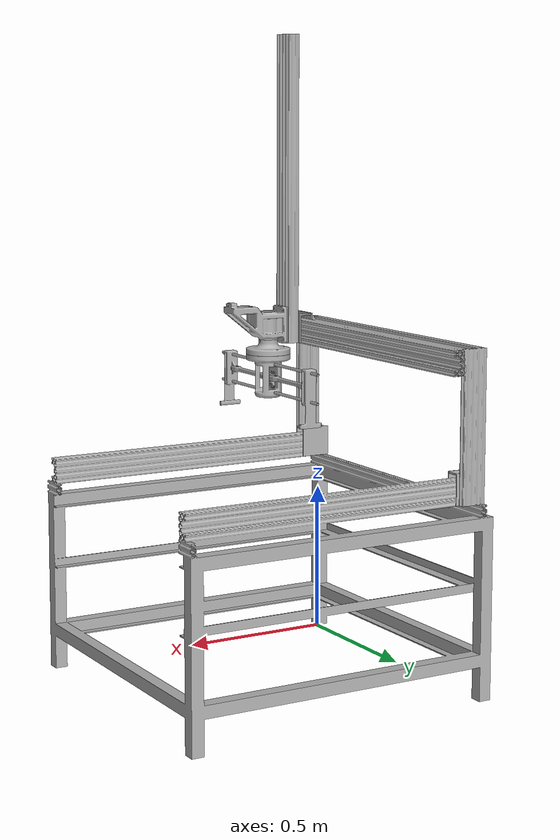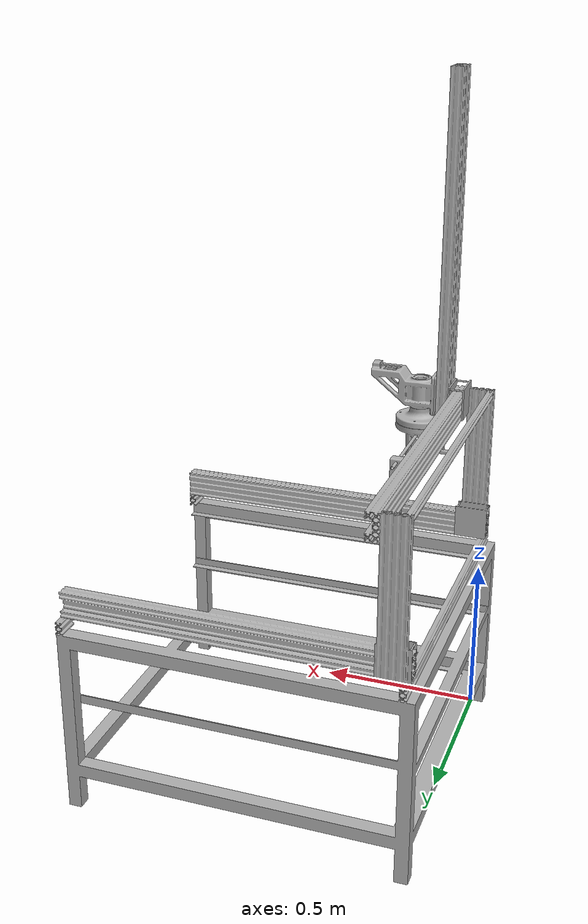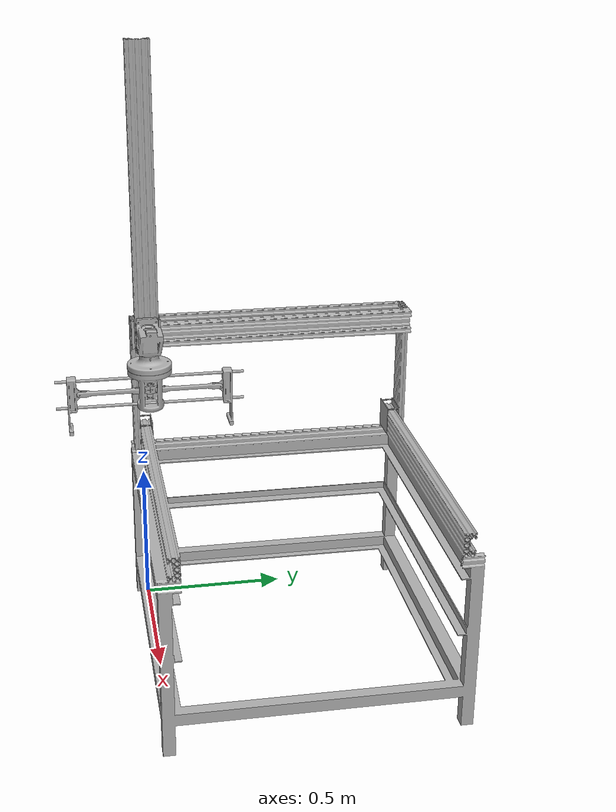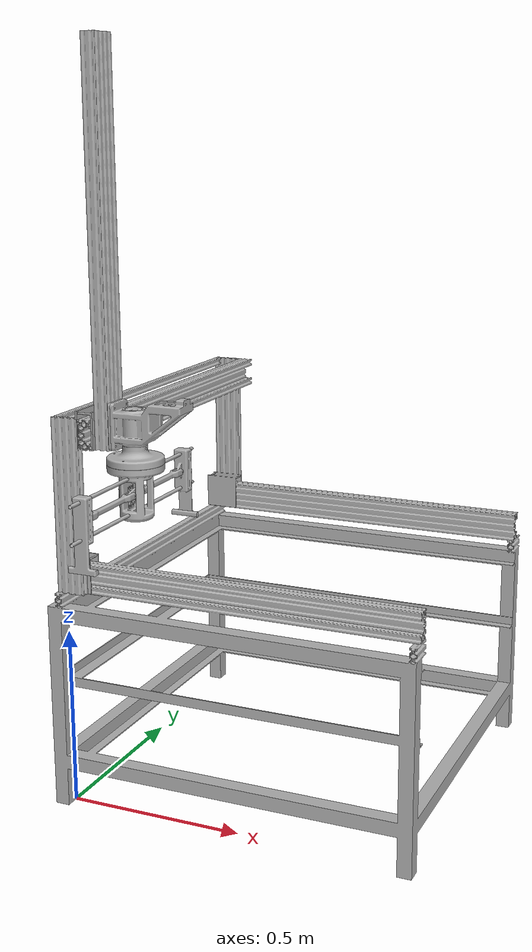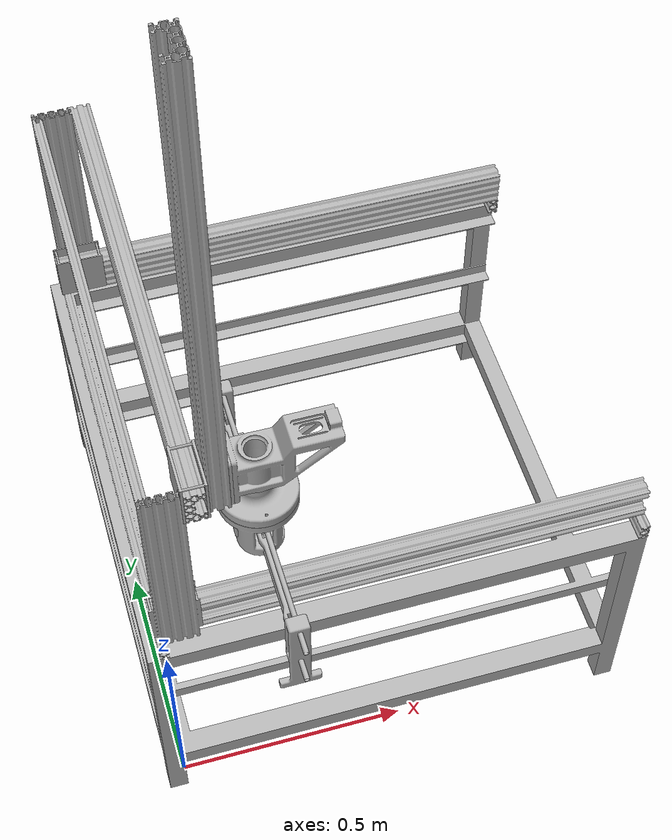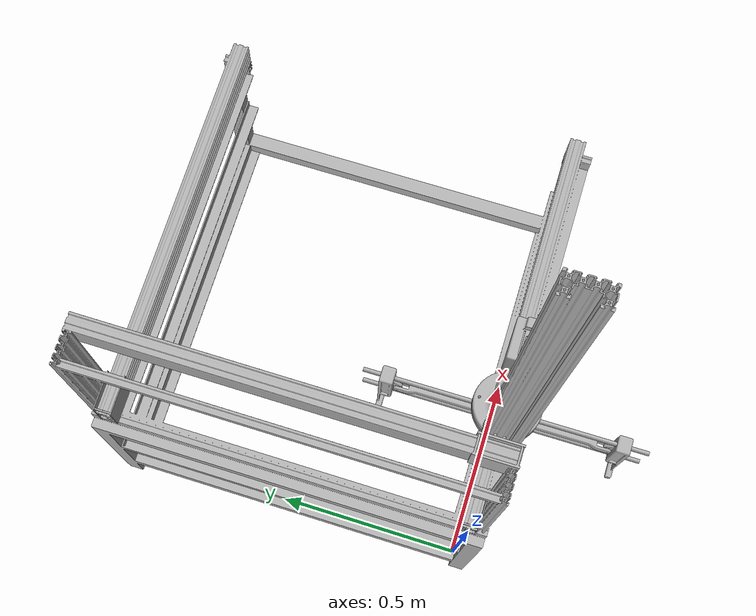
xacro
<?xml version="1.0" ?>
<robot name="robot_ensamble" xmlns:xacro="http://www.ros.org/wiki/xacro">

<!-- ROS usa package://; la exportacion para Isaac usa ../meshes/. -->
<xacro:arg name="mesh_prefix" default="package://robot_ensamble_description/meshes/" />
<xacro:arg name="include_ros_extensions" default="true" />
<xacro:include filename="materials.xacro" />
<xacro:if value="$(arg include_ros_extensions)">
  <xacro:include filename="robot_ensamble.trans" />
  <xacro:include filename="robot_ensamble.gazebo" />
</xacro:if>
<link name="base_link">
  <inertial>
    <origin xyz="0.40917645423699256 0.4610253880844107 0.3620181857362518" rpy="0 0 0"/>
    <mass value="117.52823039700941"/>
    <inertia ixx="25.806076" iyy="22.489346" izz="36.590381" ixy="-0.011239" iyz="0.003272" ixz="1.368512"/>
  </inertial>
  <visual>
    <origin xyz="0 0 0" rpy="0 0 0"/>
    <geometry>
      <mesh filename="$(arg mesh_prefix)base_link.stl" scale="0.001 0.001 0.001"/>
    </geometry>
    <material name="silver"/>
  </visual>
  <collision>
    <origin xyz="0 0 0" rpy="0 0 0"/>
    <geometry>
      <mesh filename="$(arg mesh_prefix)base_link.stl" scale="0.001 0.001 0.001"/>
    </geometry>
  </collision>
</link>

<link name="x_link_1">
  <inertial>
    <origin xyz="0.07555855369126223 0.4303889916943565 0.35024537371790165" rpy="0 0 0"/>
    <mass value="4.217725934641851"/>
    <inertia ixx="0.681784" iyy="0.0999" izz="0.593813" ixy="-3.2e-05" iyz="0.000114" ixz="-0.00924"/>
  </inertial>
  <visual>
    <origin xyz="0.02001 -0.03 -0.6215" rpy="0 0 0"/>
    <geometry>
      <mesh filename="$(arg mesh_prefix)x_link_1.stl" scale="0.001 0.001 0.001"/>
    </geometry>
    <material name="silver"/>
  </visual>
  <collision>
    <origin xyz="0.02001 -0.03 -0.6215" rpy="0 0 0"/>
    <geometry>
      <mesh filename="$(arg mesh_prefix)x_link_1.stl" scale="0.001 0.001 0.001"/>
    </geometry>
  </collision>
</link>

<link name="y_link_1">
  <inertial>
    <origin xyz="-0.020000000000001017 0.04999970476181406 0.05069592675514922" rpy="0 0 0"/>
    <mass value="0.7973307511653405"/>
    <inertia ixx="0.001358" iyy="0.001079" izz="0.00108" ixy="0.0" iyz="-0.0" ixz="0.0"/>
  </inertial>
  <visual>
    <origin xyz="-0.10999 0.0325 -1.023" rpy="0 0 0"/>
    <geometry>
      <mesh filename="$(arg mesh_prefix)y_link_1.stl" scale="0.001 0.001 0.001"/>
    </geometry>
    <material name="silver"/>
  </visual>
  <collision>
    <origin xyz="-0.10999 0.0325 -1.023" rpy="0 0 0"/>
    <geometry>
      <mesh filename="$(arg mesh_prefix)y_link_1.stl" scale="0.001 0.001 0.001"/>
    </geometry>
  </collision>
</link>

<link name="z_link_1">
  <inertial>
    <origin xyz="0.022649381038524527 0.038487124708174 0.5174999999999996" rpy="0 0 0"/>
    <mass value="6.4060223481477445"/>
    <inertia ixx="0.576368" iyy="0.5728" izz="0.005452" ixy="1e-06" iyz="0.0" ixz="0.0"/>
  </inertial>
  <visual>
    <origin xyz="-0.11499 0.0325 -1.023" rpy="0 0 0"/>
    <geometry>
      <mesh filename="$(arg mesh_prefix)z_link_1.stl" scale="0.001 0.001 0.001"/>
    </geometry>
    <material name="silver"/>
  </visual>
  <collision>
    <origin xyz="-0.11499 0.0325 -1.023" rpy="0 0 0"/>
    <geometry>
      <mesh filename="$(arg mesh_prefix)z_link_1.stl" scale="0.001 0.001 0.001"/>
    </geometry>
  </collision>
</link>

<link name="complemento_cabezal_1">
  <inertial>
    <origin xyz="0.0029999999999990867 -2.940460960589031e-07 0.06250000000000044" rpy="0 0 0"/>
    <mass value="0.060885189763587116"/>
    <inertia ixx="0.000106" iyy="7.8e-05" izz="2.8e-05" ixy="-0.0" iyz="-0.0" ixz="0.0"/>
  </inertial>
  <visual>
    <origin xyz="-0.15499 -0.006 -1.023" rpy="0 0 0"/>
    <geometry>
      <mesh filename="$(arg mesh_prefix)complemento_cabezal_1.stl" scale="0.001 0.001 0.001"/>
    </geometry>
    <material name="silver"/>
  </visual>
  <collision>
    <origin xyz="-0.15499 -0.006 -1.023" rpy="0 0 0"/>
    <geometry>
      <mesh filename="$(arg mesh_prefix)complemento_cabezal_1.stl" scale="0.001 0.001 0.001"/>
    </geometry>
  </collision>
</link>

<link name="robot_cabezal_1">
  <inertial>
    <origin xyz="0.07470375860725328 1.1761516747066901e-05 0.07435169471155789" rpy="0 0 0"/>
    <mass value="0.735233698589477"/>
    <inertia ixx="0.001161" iyy="0.002962" izz="0.002526" ixy="-0.0" iyz="-0.0" ixz="-0.000677"/>
  </inertial>
  <visual>
    <origin xyz="-0.16099 -0.006 -1.023" rpy="0 0 0"/>
    <geometry>
      <mesh filename="$(arg mesh_prefix)robot_cabezal_1.stl" scale="0.001 0.001 0.001"/>
    </geometry>
    <material name="silver"/>
  </visual>
  <collision>
    <origin xyz="-0.16099 -0.006 -1.023" rpy="0 0 0"/>
    <geometry>
      <mesh filename="$(arg mesh_prefix)robot_cabezal_1.stl" scale="0.001 0.001 0.001"/>
    </geometry>
  </collision>
</link>

<link name="acople_cabeza_1">
  <inertial>
    <origin xyz="1.0269562977782698e-15 -2.940460989220642e-07 -0.03529715770244457" rpy="0 0 0"/>
    <mass value="0.43485593621650237"/>
    <inertia ixx="0.000618" iyy="0.000617" izz="0.001131" ixy="-0.0" iyz="-0.0" ixz="0.0"/>
  </inertial>
  <visual>
    <origin xyz="-0.21099 -0.006 -1.0375" rpy="0 0 0"/>
    <geometry>
      <mesh filename="$(arg mesh_prefix)acople_cabeza_1.stl" scale="0.001 0.001 0.001"/>
    </geometry>
    <material name="silver"/>
  </visual>
  <collision>
    <origin xyz="-0.21099 -0.006 -1.0375" rpy="0 0 0"/>
    <geometry>
      <mesh filename="$(arg mesh_prefix)acople_cabeza_1.stl" scale="0.001 0.001 0.001"/>
    </geometry>
  </collision>
</link>

<link name="cabezal_inferior_1">
  <inertial>
    <origin xyz="-0.0032788461990195805 -2.0130890143960425e-05 -0.05001506846643888" rpy="0 0 0"/>
    <mass value="0.808298897205994"/>
    <inertia ixx="0.002812" iyy="0.002837" izz="0.001617" ixy="-0.0" iyz="-1e-06" ixz="-8.5e-05"/>
  </inertial>
  <visual>
    <origin xyz="-0.21099 -0.006 -0.988" rpy="0 0 0"/>
    <geometry>
      <mesh filename="$(arg mesh_prefix)cabezal_inferior_1.stl" scale="0.001 0.001 0.001"/>
    </geometry>
    <material name="silver"/>
  </visual>
  <collision>
    <origin xyz="-0.21099 -0.006 -0.988" rpy="0 0 0"/>
    <geometry>
      <mesh filename="$(arg mesh_prefix)cabezal_inferior_1.stl" scale="0.001 0.001 0.001"/>
    </geometry>
  </collision>
</link>

<link name="servo_mg996R_1">
  <inertial>
    <origin xyz="-0.008872223124901296 0.004961019065706306 0.02474433155171829" rpy="0 0 0"/>
    <mass value="0.24706042811522722"/>
    <inertia ixx="4.3e-05" iyy="6.5e-05" izz="3.8e-05" ixy="-0.0" iyz="-0.0" ixz="-0.0"/>
  </inertial>
  <visual>
    <origin xyz="-0.190512 -0.00091 -0.8725" rpy="0 0 0"/>
    <geometry>
      <mesh filename="$(arg mesh_prefix)servo_mg996R_1.stl" scale="0.001 0.001 0.001"/>
    </geometry>
    <material name="silver"/>
  </visual>
  <collision>
    <origin xyz="-0.190512 -0.00091 -0.8725" rpy="0 0 0"/>
    <geometry>
      <mesh filename="$(arg mesh_prefix)servo_mg996R_1.stl" scale="0.001 0.001 0.001"/>
    </geometry>
  </collision>
</link>

<link name="horn_Servo_1">
  <inertial>
    <origin xyz="0.0031874891212040346 1.4413294836576607e-05 -1.4432899320127035e-15" rpy="0 0 0"/>
    <mass value="0.005099610361289279"/>
    <!-- Estimacion por integracion del STL a escala metrica y densidad uniforme,
         con la masa y el origen inercial CAD originales; unidades kg*m^2. -->
    <inertia ixx="2.4043692089e-07" iyy="1.2530990918e-07" izz="1.2530779899e-07" ixy="5.0477842017e-10" iyz="-5.3076659018e-16" ixz="2.4812060723e-16"/>
  </inertial>
  <visual>
    <origin xyz="-0.20249 -0.005962 -0.907" rpy="0 0 0"/>
    <geometry>
      <mesh filename="$(arg mesh_prefix)horn_Servo_1.stl" scale="0.001 0.001 0.001"/>
    </geometry>
    <material name="silver"/>
  </visual>
  <collision>
    <origin xyz="-0.20249 -0.005962 -0.907" rpy="0 0 0"/>
    <geometry>
      <mesh filename="$(arg mesh_prefix)horn_Servo_1.stl" scale="0.001 0.001 0.001"/>
    </geometry>
  </collision>
</link>

<link name="acople_palas_1">
  <inertial>
    <origin xyz="0.0011958116261007457 5.411013636849767e-06 -1.1102230246251565e-15" rpy="0 0 0"/>
    <mass value="0.07977197198617901"/>
    <inertia ixx="3e-05" iyy="5e-06" izz="2.6e-05" ixy="0.0" iyz="-0.0" ixz="0.0"/>
  </inertial>
  <visual>
    <origin xyz="-0.20699 -0.005982 -0.907" rpy="0 0 0"/>
    <geometry>
      <mesh filename="$(arg mesh_prefix)acople_palas_1.stl" scale="0.001 0.001 0.001"/>
    </geometry>
    <material name="silver"/>
  </visual>
  <collision>
    <origin xyz="-0.20699 -0.005982 -0.907" rpy="0 0 0"/>
    <geometry>
      <mesh filename="$(arg mesh_prefix)acople_palas_1.stl" scale="0.001 0.001 0.001"/>
    </geometry>
  </collision>
</link>

<link name="Paleta_grid_1_1">
  <inertial>
    <origin xyz="0.0053689397680850015 -0.10697776945786946 2.2922719722373586e-08" rpy="0 0 0"/>
    <mass value="0.05350927460261899"/>
    <inertia ixx="0.000258" iyy="3e-06" izz="0.000259" ixy="1e-06" iyz="-0.0" ixz="0.0"/>
  </inertial>
  <visual>
    <origin xyz="-0.2041 0.019031 -0.907" rpy="0 0 0"/>
    <geometry>
      <mesh filename="$(arg mesh_prefix)Paleta_grid_1_1.stl" scale="0.001 0.001 0.001"/>
    </geometry>
    <material name="silver"/>
  </visual>
  <collision>
    <origin xyz="-0.2041 0.019031 -0.907" rpy="0 0 0"/>
    <geometry>
      <mesh filename="$(arg mesh_prefix)Paleta_grid_1_1.stl" scale="0.001 0.001 0.001"/>
    </geometry>
  </collision>
</link>

<link name="Paleta_grid_2_1">
  <inertial>
    <origin xyz="0.0044314451289368395 0.10701969304160405 2.2922718723172864e-08" rpy="0 0 0"/>
    <mass value="0.05350927460261899"/>
    <inertia ixx="0.000258" iyy="3e-06" izz="0.000259" ixy="1e-06" iyz="-0.0" ixz="0.0"/>
  </inertial>
  <visual>
    <origin xyz="-0.20388 -0.030969 -0.907" rpy="0 0 0"/>
    <geometry>
      <mesh filename="$(arg mesh_prefix)Paleta_grid_2_1.stl" scale="0.001 0.001 0.001"/>
    </geometry>
    <material name="silver"/>
  </visual>
  <collision>
    <origin xyz="-0.20388 -0.030969 -0.907" rpy="0 0 0"/>
    <geometry>
      <mesh filename="$(arg mesh_prefix)Paleta_grid_2_1.stl" scale="0.001 0.001 0.001"/>
    </geometry>
  </collision>
</link>

<link name="Pala_DER_1">
  <inertial>
    <origin xyz="-0.003882699651938215 -0.02679462902139154 -0.019023121817094202" rpy="0 0 0"/>
    <mass value="0.1680843406216635"/>
    <inertia ixx="0.000488" iyy="0.000494" izz="4.1e-05" ixy="-0.0" iyz="-2.9e-05" ixz="0.0"/>
  </inertial>
  <visual>
    <origin xyz="-0.214838 0.232986 -0.907" rpy="0 0 0"/>
    <geometry>
      <mesh filename="$(arg mesh_prefix)Pala_DER_1.stl" scale="0.001 0.001 0.001"/>
    </geometry>
    <material name="silver"/>
  </visual>
  <collision>
    <origin xyz="-0.214838 0.232986 -0.907" rpy="0 0 0"/>
    <geometry>
      <mesh filename="$(arg mesh_prefix)Pala_DER_1.stl" scale="0.001 0.001 0.001"/>
    </geometry>
  </collision>
</link>

<link name="Pala_IZQ_1">
  <inertial>
    <origin xyz="-0.004117276449750684 0.02675951802045834 -0.019023121425130296" rpy="0 0 0"/>
    <mass value="0.16808434411260517"/>
    <inertia ixx="0.000488" iyy="0.000494" izz="4.1e-05" ixy="-0.0" iyz="2.9e-05" ixz="-0.0"/>
  </inertial>
  <visual>
    <origin xyz="-0.212742 -0.24501 -0.907" rpy="0 0 0"/>
    <geometry>
      <mesh filename="$(arg mesh_prefix)Pala_IZQ_1.stl" scale="0.001 0.001 0.001"/>
    </geometry>
    <material name="silver"/>
  </visual>
  <collision>
    <origin xyz="-0.212742 -0.24501 -0.907" rpy="0 0 0"/>
    <geometry>
      <mesh filename="$(arg mesh_prefix)Pala_IZQ_1.stl" scale="0.001 0.001 0.001"/>
    </geometry>
  </collision>
</link>

<link name="Soporte_1_1">
  <inertial>
    <origin xyz="-0.0014025605651105388 0.319996882281929 -2.220446049250313e-15" rpy="0 0 0"/>
    <mass value="0.07497096708526683"/>
    <inertia ixx="0.00256" iyy="2e-06" izz="0.00256" ixy="1.1e-05" iyz="0.0" ixz="0.0"/>
  </inertial>
  <visual>
    <origin xyz="-0.211187 0.039037 -0.955" rpy="0 0 0"/>
    <geometry>
      <mesh filename="$(arg mesh_prefix)Soporte_1_1.stl" scale="0.001 0.001 0.001"/>
    </geometry>
    <material name="silver"/>
  </visual>
  <collision>
    <origin xyz="-0.211187 0.039037 -0.955" rpy="0 0 0"/>
    <geometry>
      <mesh filename="$(arg mesh_prefix)Soporte_1_1.stl" scale="0.001 0.001 0.001"/>
    </geometry>
  </collision>
</link>

<link name="Soporte_2_1">
  <inertial>
    <origin xyz="-0.0014028765290944045 0.31999694627881303 -1.1102230246251565e-15" rpy="0 0 0"/>
    <mass value="0.07497096708526683"/>
    <inertia ixx="0.00256" iyy="2e-06" izz="0.00256" ixy="1.1e-05" iyz="-0.0" ixz="-0.0"/>
  </inertial>
  <visual>
    <origin xyz="-0.211187 0.038965 -0.859" rpy="0 0 0"/>
    <geometry>
      <mesh filename="$(arg mesh_prefix)Soporte_2_1.stl" scale="0.001 0.001 0.001"/>
    </geometry>
    <material name="silver"/>
  </visual>
  <collision>
    <origin xyz="-0.211187 0.038965 -0.859" rpy="0 0 0"/>
    <geometry>
      <mesh filename="$(arg mesh_prefix)Soporte_2_1.stl" scale="0.001 0.001 0.001"/>
    </geometry>
  </collision>
</link>

<joint name="x_link" type="prismatic">
  <origin xyz="-0.02001 0.031 0.6215" rpy="0 0 0"/>
  <parent link="base_link"/>
  <child link="x_link_1"/>
  <axis xyz="-1.0 0.0 0.0"/>
  <limit upper="0.0" lower="-0.9" effort="100" velocity="100"/>
</joint>

<joint name="y_link" type="prismatic">
  <origin xyz="0.13 -0.0625 0.4015" rpy="0 0 0"/>
  <parent link="x_link_1"/>
  <child link="y_link_1"/>
  <axis xyz="-0.0 1.0 -0.0"/>
  <limit upper="0.65" lower="0.0" effort="100" velocity="100"/>
</joint>

<joint name="z_link" type="prismatic">
  <origin xyz="0.005 0.0115 0.0" rpy="0 0 0"/>
  <parent link="y_link_1"/>
  <child link="z_link_1"/>
  <axis xyz="0.0 -0.0 -1.0"/>
  <limit upper="0.935" lower="0.0" effort="100" velocity="100"/>
</joint>

<joint name="rig_1" type="fixed">
  <origin xyz="0.04 0.0385 0.0" rpy="0 0 0"/>
  <parent link="z_link_1"/>
  <child link="complemento_cabezal_1"/>
</joint>

<joint name="rig_2" type="fixed">
  <origin xyz="0.006 0.0 0.0" rpy="0 0 0"/>
  <parent link="complemento_cabezal_1"/>
  <child link="robot_cabezal_1"/>
</joint>

<joint name="r_joint" type="revolute">
  <origin xyz="0.05 0.0 0.0145" rpy="0 0 0"/>
  <parent link="robot_cabezal_1"/>
  <child link="acople_cabeza_1"/>
  <axis xyz="0.0 -0.0 -1.0"/>
  <limit upper="1.570796" lower="-1.570796" effort="100" velocity="100"/>
</joint>

<joint name="rig_3" type="fixed">
  <origin xyz="0.0 0.0 -0.0495" rpy="0 0 0"/>
  <parent link="acople_cabeza_1"/>
  <child link="cabezal_inferior_1"/>
</joint>

<joint name="rig_4" type="fixed">
  <origin xyz="-0.020478 -0.00509 -0.1155" rpy="0 0 0"/>
  <parent link="cabezal_inferior_1"/>
  <child link="servo_mg996R_1"/>
</joint>

<joint name="rig_5" type="fixed">
  <origin xyz="0.011978 0.005052 0.0345" rpy="0 0 0"/>
  <parent link="servo_mg996R_1"/>
  <child link="horn_Servo_1"/>
</joint>

<joint name="rig_6" type="fixed">
  <origin xyz="0.0045 2e-05 0.0" rpy="0 0 0"/>
  <parent link="horn_Servo_1"/>
  <child link="acople_palas_1"/>
</joint>

<joint name="grid_der" type="prismatic">
  <origin xyz="-0.00289 -0.025013 0.0" rpy="0 0 0"/>
  <parent link="acople_palas_1"/>
  <child link="Paleta_grid_1_1"/>
  <axis xyz="0.004384 -0.99999 0.0"/>
  <limit upper="0.0" lower="-0.04" effort="100" velocity="100"/>
  <mimic joint="grid_izq" multiplier="-1" offset="0"/>
</joint>

<joint name="grid_izq" type="prismatic">
  <origin xyz="-0.00311 0.024987 0.0" rpy="0 0 0"/>
  <parent link="acople_palas_1"/>
  <child link="Paleta_grid_2_1"/>
  <axis xyz="0.004384 -0.99999 0.0"/>
  <limit upper="0.04" lower="0.0" effort="100" velocity="100"/>
</joint>

<joint name="rig_7" type="fixed">
  <origin xyz="0.010738 -0.213955 0.0" rpy="0 0 0"/>
  <parent link="Paleta_grid_1_1"/>
  <child link="Pala_DER_1"/>
</joint>

<joint name="rig_8" type="fixed">
  <origin xyz="0.008862 0.214041 0.0" rpy="0 0 0"/>
  <parent link="Paleta_grid_2_1"/>
  <child link="Pala_IZQ_1"/>
</joint>

<joint name="rig_9" type="fixed">
  <origin xyz="0.000197 -0.32 -0.033" rpy="0 0 0"/>
  <parent link="cabezal_inferior_1"/>
  <child link="Soporte_1_1"/>
</joint>

<joint name="rig_10" type="fixed">
  <origin xyz="0.000197 -0.32 -0.129" rpy="0 0 0"/>
  <parent link="cabezal_inferior_1"/>
  <child link="Soporte_2_1"/>
</joint>

</robot>

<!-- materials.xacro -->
<robot name="robot_ensamble" xmlns:xacro="http://www.ros.org/wiki/xacro" >

<material name="silver">
  <color rgba="0.700 0.700 0.700 1.000"/>
</material>

</robot>

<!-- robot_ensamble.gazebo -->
<robot name="robot_ensamble" xmlns:xacro="http://www.ros.org/wiki/xacro" >

<xacro:property name="body_color" value="Gazebo/Silver" />

<gazebo>
  <plugin name="control" filename="libgazebo_ros_control.so"/>
</gazebo>
<gazebo reference="base_link">
  <material>${body_color}</material>
  <mu1>0.2</mu1>
  <mu2>0.2</mu2>
  <self_collide>true</self_collide>
  <gravity>true</gravity>
</gazebo>

<gazebo reference="x_link_1">
  <material>${body_color}</material>
  <mu1>0.2</mu1>
  <mu2>0.2</mu2>
  <self_collide>true</self_collide>
</gazebo>

<gazebo reference="y_link_1">
  <material>${body_color}</material>
  <mu1>0.2</mu1>
  <mu2>0.2</mu2>
  <self_collide>true</self_collide>
</gazebo>

<gazebo reference="z_link_1">
  <material>${body_color}</material>
  <mu1>0.2</mu1>
  <mu2>0.2</mu2>
  <self_collide>true</self_collide>
</gazebo>

<gazebo reference="complemento_cabezal_1">
  <material>${body_color}</material>
  <mu1>0.2</mu1>
  <mu2>0.2</mu2>
  <self_collide>true</self_collide>
</gazebo>

<gazebo reference="robot_cabezal_1">
  <material>${body_color}</material>
  <mu1>0.2</mu1>
  <mu2>0.2</mu2>
  <self_collide>true</self_collide>
</gazebo>

<gazebo reference="acople_cabeza_1">
  <material>${body_color}</material>
  <mu1>0.2</mu1>
  <mu2>0.2</mu2>
  <self_collide>true</self_collide>
</gazebo>

<gazebo reference="cabezal_inferior_1">
  <material>${body_color}</material>
  <mu1>0.2</mu1>
  <mu2>0.2</mu2>
  <self_collide>true</self_collide>
</gazebo>

<gazebo reference="servo_mg996R_1">
  <material>${body_color}</material>
  <mu1>0.2</mu1>
  <mu2>0.2</mu2>
  <self_collide>true</self_collide>
</gazebo>

<gazebo reference="horn_Servo_1">
  <material>${body_color}</material>
  <mu1>0.2</mu1>
  <mu2>0.2</mu2>
  <self_collide>true</self_collide>
</gazebo>

<gazebo reference="acople_palas_1">
  <material>${body_color}</material>
  <mu1>0.2</mu1>
  <mu2>0.2</mu2>
  <self_collide>true</self_collide>
</gazebo>

<gazebo reference="Paleta_grid_1_1">
  <material>${body_color}</material>
  <mu1>0.2</mu1>
  <mu2>0.2</mu2>
  <self_collide>true</self_collide>
</gazebo>

<gazebo reference="Paleta_grid_2_1">
  <material>${body_color}</material>
  <mu1>0.2</mu1>
  <mu2>0.2</mu2>
  <self_collide>true</self_collide>
</gazebo>

<gazebo reference="Pala_DER_1">
  <material>${body_color}</material>
  <mu1>0.2</mu1>
  <mu2>0.2</mu2>
  <self_collide>true</self_collide>
</gazebo>

<gazebo reference="Pala_IZQ_1">
  <material>${body_color}</material>
  <mu1>0.2</mu1>
  <mu2>0.2</mu2>
  <self_collide>true</self_collide>
</gazebo>

<gazebo reference="Soporte_1_1">
  <material>${body_color}</material>
  <mu1>0.2</mu1>
  <mu2>0.2</mu2>
  <self_collide>true</self_collide>
</gazebo>

<gazebo reference="Soporte_2_1">
  <material>${body_color}</material>
  <mu1>0.2</mu1>
  <mu2>0.2</mu2>
  <self_collide>true</self_collide>
</gazebo>

</robot>
